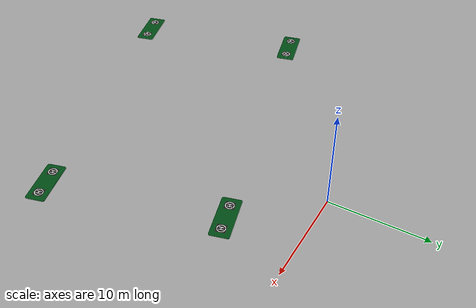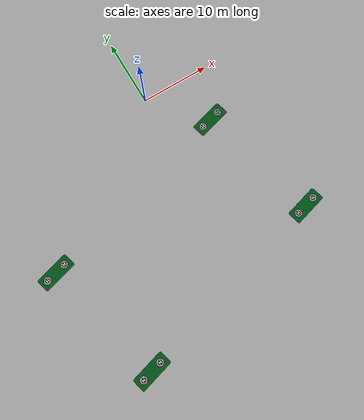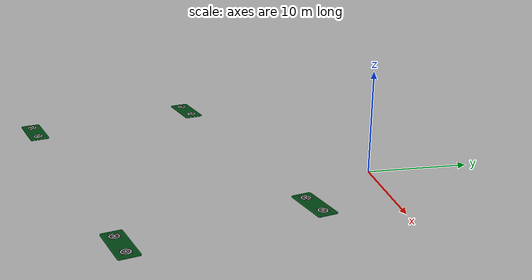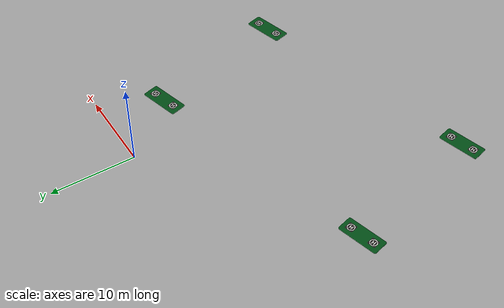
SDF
<sdf version="1.5">
 <world name="default">
  <spherical_coordinates>
   <surface_model>EARTH_WGS84</surface_model>
   <latitude_deg>37.411802</latitude_deg>
   <longitude_deg>-121.995739</longitude_deg>
   <elevation>0.0</elevation>
   <heading_deg>0</heading_deg>
  </spherical_coordinates>
  <physics name="default_physics" default="0" type="ode">
   <gravity>0 0 -9.8066</gravity>
   <ode>
    <solver>
     <type>quick</type>
     <iters>10</iters>
     <sor>1.3</sor>
     <use_dynamic_moi_rescaling>0</use_dynamic_moi_rescaling>
    </solver>
    <constraints>
     <cfm>0</cfm>
     <erp>0.2</erp>
     <contact_max_correcting_vel>1000</contact_max_correcting_vel>
     <contact_surface_layer>0.001</contact_surface_layer>
    </constraints>
   </ode>
   <max_step_size>0.004</max_step_size>
   <real_time_factor>1</real_time_factor>
   <real_time_update_rate>250</real_time_update_rate>
   <magnetic_field>6.0e-06 2.3e-05 -4.2e-05</magnetic_field>
  </physics>
  <scene><shadows>false</shadows></scene>
  <light type="directional" name="sun">
   <pose>250 250 600 0 0 0</pose>
   <diffuse>0.8 0.8 0.8 1</diffuse>
   <specular>0.2 0.2 0.2 1</specular>
   <attenuation>
    <range>1000</range>
    <constant>0.9</constant>
    <linear>0.01</linear>
    <quadratic>0.001</quadratic>
   </attenuation>
   <direction>0 0 -1</direction>
  </light>
  <model name="ground_plane">
   <static>true</static>
   <link name="link">
    <collision name="collision">
     <geometry><plane><normal>0 0 1</normal><size>250 250</size></plane></geometry>
     <surface><friction><ode><mu>1</mu><mu2>1</mu2></ode></friction></surface>
    </collision>
   </link>
  </model>
  <model name="refilling_station_1">
   <pose>-17.8410 -32.3992 0 0 0 0.2618</pose>
   <static>true</static>
   <link name="link">
    <visual name="visual">
     <cast_shadows>false</cast_shadows>
     <geometry>
      <mesh><uri>file://refilling_station/meshes/refilling_station.dae</uri><scale>1 1 1</scale></mesh>
     </geometry>
    </visual>
    <collision name="collision">
     <geometry>
      <mesh><uri>file://refilling_station/meshes/refilling_station.dae</uri><scale>1 1 1</scale></mesh>
     </geometry>
    </collision>
   </link>
  </model>
  <model name="refilling_station_2">
   <pose>6.4780   -7.2480 0 0 0 0.2618</pose>
   <static>true</static>
   <link name="link">
    <visual name="visual">
     <cast_shadows>false</cast_shadows>
     <geometry>
      <mesh><uri>file://refilling_station/meshes/refilling_station.dae</uri><scale>1 1 1</scale></mesh>
     </geometry>
    </visual>
    <collision name="collision">
     <geometry>
      <mesh><uri>file://refilling_station/meshes/refilling_station.dae</uri><scale>1 1 1</scale></mesh>
     </geometry>
    </collision>
   </link>
  </model>
  <model name="refilling_station_3">
   <pose>-22.4997  -15.0126 0 0 0 0.2618</pose>
   <static>true</static>
   <link name="link">
    <visual name="visual">
     <cast_shadows>false</cast_shadows>
     <geometry>
      <mesh><uri>file://refilling_station/meshes/refilling_station.dae</uri><scale>1 1 1</scale></mesh>
     </geometry>
    </visual>
    <collision name="collision">
     <geometry>
      <mesh><uri>file://refilling_station/meshes/refilling_station.dae</uri><scale>1 1 1</scale></mesh>
     </geometry>
    </collision>
   </link>
  </model>
  <model name="refilling_station_4">
   <pose>11.1368  -24.6347 0 0 0 0.2618</pose>
   <static>true</static>
   <link name="link">
    <visual name="visual">
     <cast_shadows>false</cast_shadows>
     <geometry>
      <mesh><uri>file://refilling_station/meshes/refilling_station.dae</uri><scale>1 1 1</scale></mesh>
     </geometry>
    </visual>
    <collision name="collision">
     <geometry>
      <mesh><uri>file://refilling_station/meshes/refilling_station.dae</uri><scale>1 1 1</scale></mesh>
     </geometry>
    </collision>
   </link>
  </model>
  <plugin name="mrs_gazebo_rviz_cam_synchronizer" filename="libMRSGazeboRvizCameraSynchronizer.so">
   <target_frame_id>gazebo_user_camera</target_frame_id>
   <world_origin_frame_id>uav1/rtk_origin</world_origin_frame_id>
   <frame_to_follow>uav1::base_link</frame_to_follow>
  </plugin>
 </world>
</sdf>
